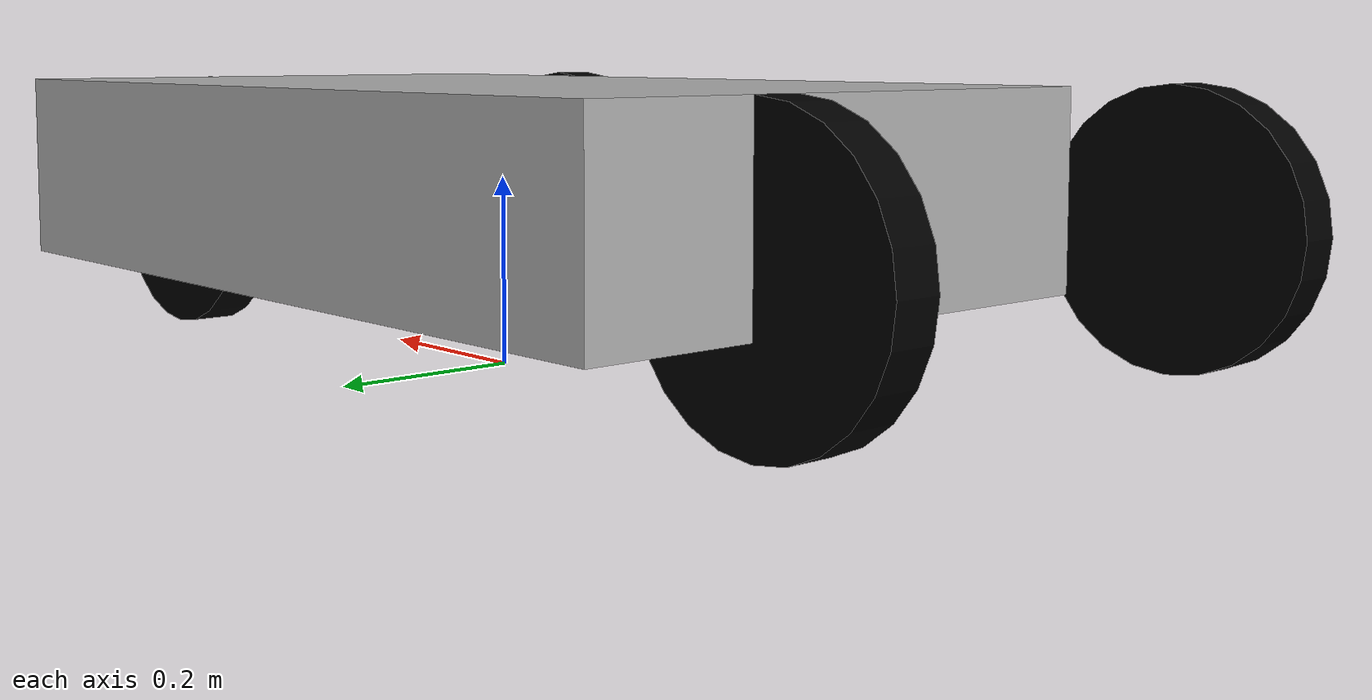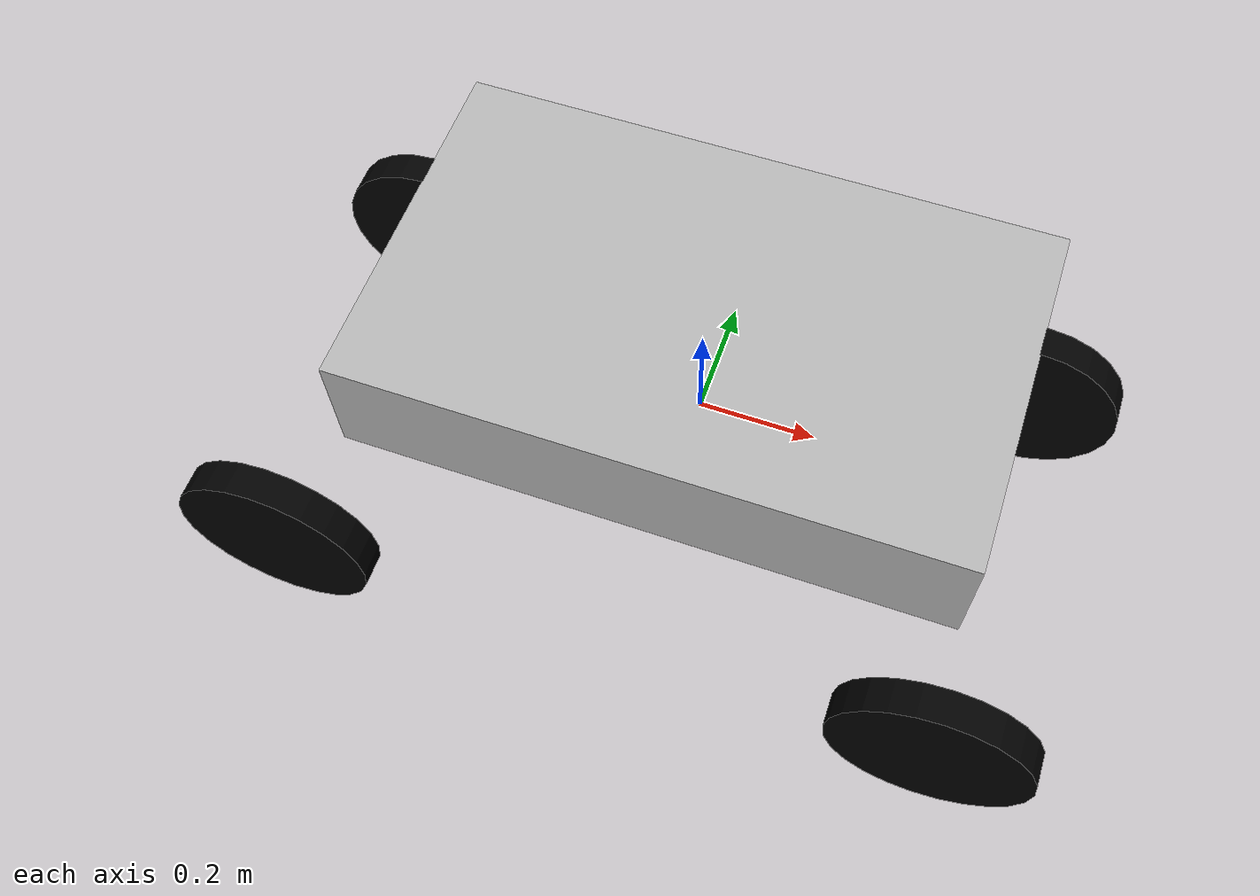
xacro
<?xml version="1.0"?>
<robot name="four_wheeled_robot" xmlns:xacro="http://ros.org/wiki/xacro">

  <!-- Parâmetros globais -->
  <xacro:property name="pi" value="3.14"/>
  <xacro:property name="chassis_length" value="1.0"/>
  <xacro:property name="chassis_width" value="0.6"/>
  <xacro:property name="chassis_height" value="0.2"/>
  <xacro:property name="wheel_radius" value="0.15"/>
  <xacro:property name="wheel_width" value="0.05"/>
  <xacro:property name="wheel_separation_x" value="0.7"/>
  <xacro:property name="wheel_separation_y" value="0.5"/>
  <xacro:property name="wheel_roll_angle" value="${pi/2}"/>

  <!-- Definir o chassis do robô -->
  <link name="chassis">
    <visual>
      <origin xyz="0 0 ${chassis_height}" rpy="0 0 0"/>
      <geometry>
        <box size="${chassis_length} ${chassis_width} ${chassis_height}"/>
      </geometry>
      <material name="grey">
        <color rgba="0.7 0.7 0.7 1.0"/>
      </material>
    </visual>
    <collision>
      <origin xyz="0 0 ${chassis_height}" rpy="0 0 0"/>
      <geometry>
        <box size="${chassis_length} ${chassis_width} ${chassis_height}"/>
      </geometry>
    </collision>
    <inertial>
      <mass value="5"/>
      <origin xyz="0 0 ${chassis_height}" rpy="0 0 0"/>
      <inertia ixx="0.1" ixy="0.0" ixz="0.0" iyy="0.1" iyz="0.0" izz="0.1"/>
    </inertial>
  </link>

  <!-- Definir a macro para uma roda -->
  <xacro:macro name="wheel" params="name x y">
    <link name="${name}">
      <visual>
        <origin xyz="0 0 ${chassis_height}" rpy="0 0 0"/>
        <geometry>
          <cylinder radius="${wheel_radius}" length="${wheel_width}"/>
        </geometry>
        <material name="black">
          <color rgba="0.0 0.0 0.0 1.0"/>
        </material>
      </visual>
      <collision>
        <origin xyz="0 0 ${chassis_height}" rpy="0 0 0"/>
        <geometry>
          <cylinder radius="${wheel_radius}" length="${wheel_width}"/>
        </geometry>
      </collision>
      <inertial>
        <mass value="1"/>
        <origin xyz="0 0 0" rpy="0 0 0"/>
        <inertia ixx="1.0" ixy="0.0" ixz="0.0" iyy="1.0" iyz="0.0" izz="1.0"/>
      </inertial>
    </link>

    <!-- Junta contínua conectando a roda ao chassis -->
    <joint name="${name}_joint" type="continuous">
      <parent link="chassis"/>
      <child link="${name}"/>
      <origin xyz="${x} ${y} ${wheel_radius}" rpy="${wheel_roll_angle} 0 0"/>
      <axis xyz="0 1 0"/>  <!-- As rodas devem girar ao longo do eixo Y -->
    </joint>
  </xacro:macro>

  <!-- Adicionar as quatro rodas -->
  <xacro:wheel name="front_left_wheel"  x="${chassis_length / 2}" y="${chassis_width / 2}"/>
  <xacro:wheel name="front_right_wheel" x="${chassis_length / 2}" y="-${chassis_width / 2}"/>
  <xacro:wheel name="rear_left_wheel"   x="-${chassis_length / 2}" y="${chassis_width / 2}"/>
  <xacro:wheel name="rear_right_wheel"  x="-${chassis_length / 2}" y="-${chassis_width / 2}"/>

</robot>
